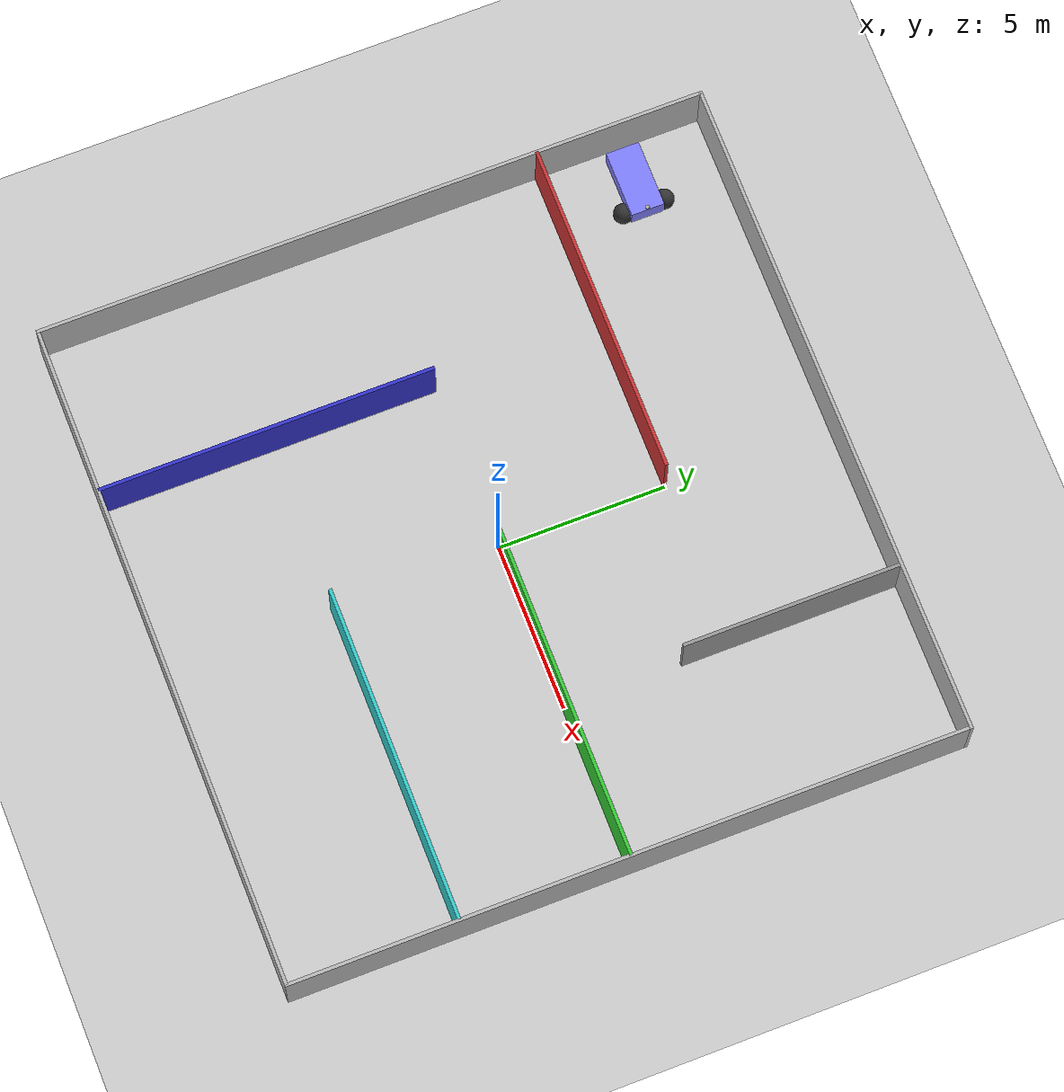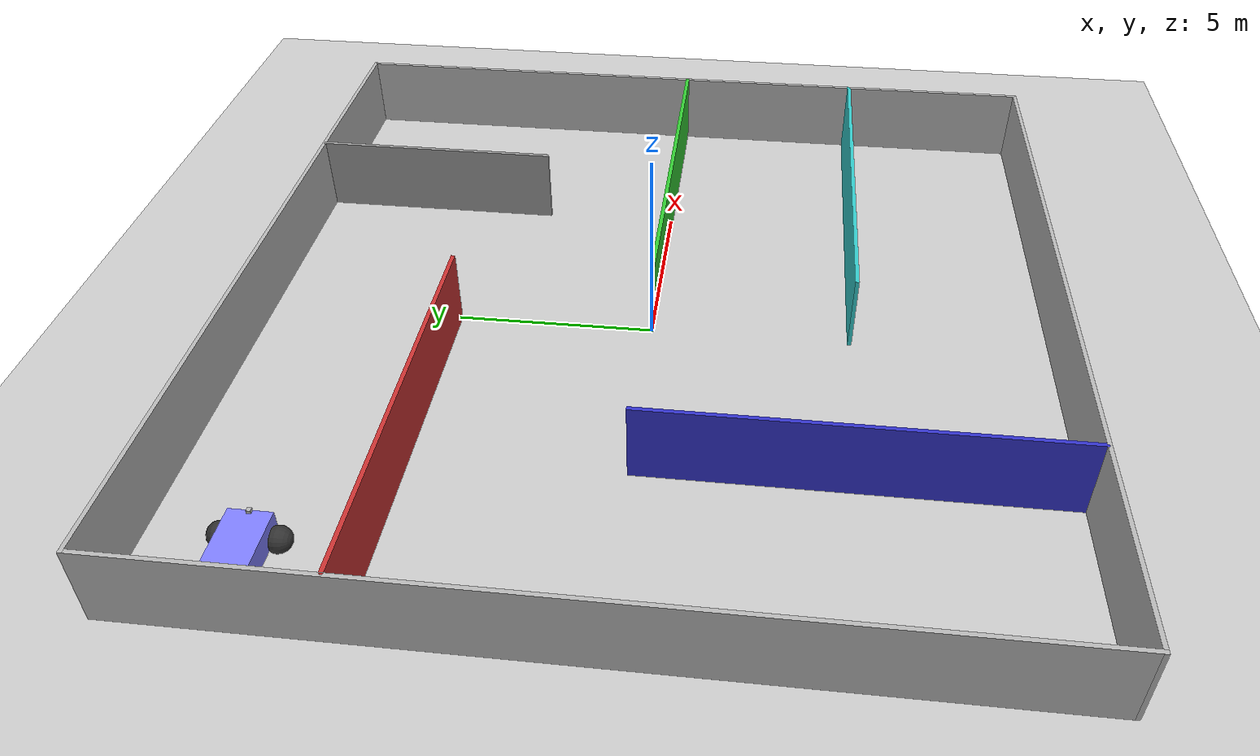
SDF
<?xml version="1.0" ?>
<sdf version="1.7">
  <world name="demo">
    <plugin filename="gz-sim-physics-system" name="gz::sim::systems::Physics"/>
    <plugin filename="gz-sim-sensors-system" name="gz::sim::systems::Sensors">
      <render_engine>ogre2</render_engine>
    </plugin>
    <plugin filename="gz-sim-scene-broadcaster-system" name="gz::sim::systems::SceneBroadcaster"/>
    <plugin filename="gz-sim-user-commands-system" name="gz::sim::systems::UserCommands"/>
    <plugin filename="BasicSystem" name="ros_gz_example_gazebo::BasicSystem"/>
    <plugin filename="FullSystem" name="ros_gz_example_gazebo::FullSystem"/>

    <physics name="10ms" type="ignored">
      <max_step_size>0.01</max_step_size>
      <real_time_factor>1.0</real_time_factor>
      <real_time_update_rate>90.0</real_time_update_rate>
      <ode>
        <solver>
          <iters>20</iters>
        </solver>
      </ode>

    </physics>

    <light name="sun" type="directional">
      <cast_shadows>false</cast_shadows>
      <pose>0 0 10 0 0 0</pose>
      <diffuse>0.8 0.8 0.8 1</diffuse>
      <specular>0.2 0.2 0.2 1</specular>
      <attenuation>
        <range>1000</range>
        <constant>0.9</constant>
        <linear>0.01</linear>
        <quadratic>0.001</quadratic>
      </attenuation>
      <direction>-0.5 0.1 -0.9</direction>
    </light>

    <model name="ground_plane">
      <static>true</static>
      <link name="link">
        <collision name="collision">
          <geometry><plane><normal>0 0 1</normal><size>100 100</size></plane></geometry>
        </collision>
        <visual name="visual">
          <geometry><plane><normal>0 0 1</normal><size>100 100</size></plane></geometry>
          <material>
            <ambient>0.8 0.8 0.8 1</ambient>
            <diffuse>0.8 0.8 0.8 1</diffuse>
            <specular>0.8 0.8 0.8 1</specular>
          </material>
        </visual>
      </link>
    </model>

    <model name="pared_1"><pose>0 10 1 0 0 0</pose><static>true</static><link name="link_1"><visual name="visual_1"><geometry><box><size>20.1 0.1 2</size></box></geometry></visual><collision name="collision_1"><geometry><box><size>20.1 0.1 2</size></box></geometry></collision></link></model>
    <model name="pared_2"><pose>-10 0 1 0 0 1.5708</pose><static>true</static><link name="link_2"><visual name="visual_2"><geometry><box><size>20.1 0.1 2</size></box></geometry></visual><collision name="collision_2"><geometry><box><size>20.1 0.1 2</size></box></geometry></collision></link></model>
    <model name="pared_3"><pose>0 -10 1 0 0 0</pose><static>true</static><link name="link_3"><visual name="visual_3"><geometry><box><size>20.1 0.1 2</size></box></geometry></visual><collision name="collision_3"><geometry><box><size>20.1 0.1 2</size></box></geometry></collision></link></model>
    <model name="pared_4"><pose>10 0 1 0 0 1.5708</pose><static>true</static><link name="link_4"><visual name="visual_4"><geometry><box><size>20.1 0.1 2</size></box></geometry></visual><collision name="collision_4"><geometry><box><size>20.1 0.1 2</size></box></geometry></collision></link></model>

    <model name="i_pared_A"><pose>-5 5 1 0 0 0</pose><static>true</static>
      <link name="link_A">
        <visual name="visual_A"><geometry><box><size>10 0.1 2</size></box></geometry>
          <material><ambient>0.8 0.2 0.2 1</ambient><diffuse>0.8 0.2 0.2 1</diffuse></material>
        </visual>
        <collision name="collision_A"><geometry><box><size>10 0.1 2</size></box></geometry></collision>
      </link>
    </model>

    <model name="i_pared_B"><pose>5 0 1 0 0 0</pose><static>true</static>
      <link name="link_B">
        <visual name="visual_B"><geometry><box><size>10 0.1 2</size></box></geometry>
          <material><ambient>0.2 0.8 0.2 1</ambient><diffuse>0.2 0.8 0.2 1</diffuse></material>
        </visual>
        <collision name="collision_B"><geometry><box><size>10 0.1 2</size></box></geometry></collision>
      </link>
    </model>

    <model name="i_pared_C"><pose>-5 -5 1 0 0 1.5708</pose><static>true</static>
      <link name="link_C">
        <visual name="visual_C"><geometry><box><size>10 0.1 2</size></box></geometry>
          <material><ambient>0.2 0.2 0.8 1</ambient><diffuse>0.2 0.2 0.8 1</diffuse></material>
        </visual>
        <collision name="collision_C"><geometry><box><size>10 0.1 2</size></box></geometry></collision>
      </link>
    </model>

    <model name="i_pared_E"><pose>5 -5 1 0 0 0</pose><static>true</static>
      <link name="link_E">
        <visual name="visual_E"><geometry><box><size>10 0.1 2</size></box></geometry>
          <material><ambient>0.2 0.8 0.8 1</ambient><diffuse>0.2 0.8 0.8 1</diffuse></material>
        </visual>
        <collision name="collision_E"><geometry><box><size>10 0.1 2</size></box></geometry></collision>
      </link>
    </model>

    <model name="pared_nueva">
      <pose>5 6.75 1 0 0 1.5708</pose>
      <static>true</static>
      <link name="link_new">
        <visual name="visual_new">
          <geometry><box><size>6.5 0.1 2</size></box></geometry>
          <material>
            <ambient>0.6 0.6 0.6 1</ambient>
            <diffuse>0.6 0.6 0.6 1</diffuse>
          </material>
        </visual>
        <collision name="collision_new"><geometry><box><size>6.5 0.1 2</size></box></geometry></collision>
      </link>
    </model>

    <model name="diff_drive">
      <self_collide>true</self_collide>
      <pose>-8.5 7.5 0.35 0 0 0</pose>
      <include merge="true">
        <uri>package://ros_gz_example_description/models/diff_drive</uri>
      </include>

      <plugin filename="gz-sim-joint-state-publisher-system" name="gz::sim::systems::JointStatePublisher"/>

      <plugin filename="gz-sim-pose-publisher-system" name="gz::sim::systems::PosePublisher">
        <publish_link_pose>true</publish_link_pose>
        <use_pose_vector_msg>true</use_pose_vector_msg>
        <!-- cambie esto a false -->
        <static_publisher>false</static_publisher>
        <!-- cambie eso a 30, etsaba en 1 -->
        <static_update_frequency>30</static_update_frequency>
      </plugin>

      <plugin filename="gz-sim-odometry-publisher-system" name="gz::sim::systems::OdometryPublisher">
        <odom_frame>diff_drive/odom</odom_frame>
        <robot_base_frame>diff_drive</robot_base_frame>
      </plugin>
    </model>

  </world>
</sdf>

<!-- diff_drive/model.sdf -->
<sdf version="1.8">
    <model name='diff_drive'>
      <link name='chassis'>
        <pose>-0.151427 -0 0.175 0 -0 0</pose>
        <inertial>
          <mass>1.14395</mass>
          <inertia>
            <ixx>0.126164</ixx>
            <ixy>0</ixy>
            <ixz>0</ixz>
            <iyy>0.416519</iyy>
            <iyz>0</iyz>
            <izz>0.481014</izz>
          </inertia>
        </inertial>
        <visual name='visual_chassis'>
          <geometry>
            <box>
              <size>2.01142 1 0.568726</size>
            </box>
          </geometry>
          <material>
            <ambient>0.5 0.5 1.0 1</ambient>
            <diffuse>0.5 0.5 1.0 1</diffuse>
            <specular>0.0 0.0 1.0 1</specular>
          </material>
        </visual>
        <collision name='collision_chassis'>
          <geometry>
            <box>
              <size>2.01142 1 0.568726</size>
            </box>
          </geometry>
        </collision>
      </link>

      <link name='left_wheel'>
        <pose>0.554283 0.625029 -0.025 -1.5707 0 0</pose>
        <inertial>
          <mass>2</mass>
          <inertia>
            <ixx>0.145833</ixx>
            <ixy>0</ixy>
            <ixz>0</ixz>
            <iyy>0.145833</iyy>
            <iyz>0</iyz>
            <izz>0.125</izz>
          </inertia>
        </inertial>
        <visual name='visual_left_wheel'>
          <geometry>
            <sphere>
              <radius>0.3</radius>
            </sphere>
          </geometry>
          <material>
            <ambient>0.2 0.2 0.2 1</ambient>
            <diffuse>0.2 0.2 0.2 1</diffuse>
            <specular>0.2 0.2 0.2 1</specular>
          </material>
        </visual>
        <collision name='collision_left_wheel'>
          <geometry>
            <sphere>
              <radius>0.3</radius>
            </sphere>
          </geometry>
        </collision>
      </link>

      <link name='right_wheel'>
        <pose>0.554282 -0.625029 -0.025 -1.5707 0 0</pose>
        <inertial>
          <mass>2</mass>
          <inertia>
            <ixx>0.145833</ixx>
            <ixy>0</ixy>
            <ixz>0</ixz>
            <iyy>0.145833</iyy>
            <iyz>0</iyz>
            <izz>0.125</izz>
          </inertia>
        </inertial>
        <visual name='visual_right_wheel'>
          <geometry>
            <sphere>
              <radius>0.3</radius>
            </sphere>
          </geometry>
          <material>
            <ambient>0.2 0.2 0.2 1</ambient>
            <diffuse>0.2 0.2 0.2 1</diffuse>
            <specular>0.2 0.2 0.2 1</specular>
          </material>
        </visual>
        <collision name='collision_right_wheel'>
          <geometry>
            <sphere>
              <radius>0.3</radius>
            </sphere>
          </geometry>
        </collision>
      </link>

      <link name='caster'>
        <pose>-0.957138 -0 -0.125 0 -0 0</pose>
        <inertial>
          <mass>1</mass>
          <inertia>
            <ixx>0.1</ixx>
            <ixy>0</ixy>
            <ixz>0</ixz>
            <iyy>0.1</iyy>
            <iyz>0</iyz>
            <izz>0.1</izz>
          </inertia>
        </inertial>
        <visual name='visual_caster'>
          <geometry>
            <sphere>
              <radius>0.2</radius>
            </sphere>
          </geometry>
          <material>
            <ambient>0.2 0.2 0.2 1</ambient>
            <diffuse>0.2 0.2 0.2 1</diffuse>
            <specular>0.2 0.2 0.2 1</specular>
          </material>
        </visual>
        <collision name='collision_caster'>
          <geometry>
            <sphere>
              <radius>0.2</radius>
            </sphere>
          </geometry>
        </collision>
      </link>

      <link name="lidar_link">
        <pose>0.8 0 0.5 0 0 0</pose>
        <inertial>
          <mass>0.1</mass>
          <inertia>
            <ixx>0.000166667</ixx>
            <iyy>0.000166667</iyy>
            <izz>0.000166667</izz>
          </inertia>
        </inertial>
        <collision name="collision">
          <geometry>
            <box>
              <size>0.1 0.1 0.1</size>
            </box>
          </geometry>
        </collision>
        <visual name="visual">
          <geometry>
            <box>
              <size>0.1 0.1 0.1</size>
            </box>
          </geometry>
        </visual>
        <sensor name='gpu_lidar' type='gpu_lidar'>
          <pose>0 0 0 0 0 0</pose>
          <topic>scan</topic>
          <gz_frame_id>diff_drive/lidar_link</gz_frame_id>
          <update_rate>10</update_rate>
          <lidar>
            <scan>
              <horizontal>
                <samples>720</samples>
                <resolution>1</resolution>
                <min_angle>-3.14159</min_angle>
                <max_angle>3.14159</max_angle>
              </horizontal>
              <vertical>
                <samples>1</samples>
                <resolution>1</resolution>
                <min_angle>0.0</min_angle>
                <max_angle>0.0</max_angle>
              </vertical>
            </scan>
            <range>
              <min>0.08</min>
              <max>10.0</max>
              <resolution>0.01</resolution>
            </range>
          </lidar>
          <visualize>true</visualize>
        </sensor>
      </link>

      <joint name='lidar_joint' type='fixed'>
        <parent>chassis</parent>
        <child>lidar_link</child>
      </joint>

      <joint name='left_wheel_joint' type='revolute'>
        <parent>chassis</parent>
        <child>left_wheel</child>
        <axis>
          <xyz>0 0 1</xyz>
          <limit>
            <lower>-1.79769e+308</lower>
            <upper>1.79769e+308</upper>
          </limit>
        </axis>
      </joint>

      <joint name='right_wheel_joint' type='revolute'>
        <parent>chassis</parent>
        <child>right_wheel</child>
        <axis>
          <xyz>0 0 1</xyz>
          <limit>
            <lower>-1.79769e+308</lower>
            <upper>1.79769e+308</upper>
          </limit>
        </axis>
      </joint>

      <joint name='caster_wheel' type='ball'>
        <parent>chassis</parent>
        <child>caster</child>
      </joint>

      <plugin filename="ignition-gazebo-diff-drive-system"
              name="ignition::gazebo::systems::DiffDrive">
        <left_joint>left_wheel_joint</left_joint>
        <right_joint>right_wheel_joint</right_joint>
        <wheel_separation>1.25</wheel_separation>
        <wheel_radius>0.3</wheel_radius>
        <odom_publish_frequency>1</odom_publish_frequency>
        <max_linear_acceleration>1</max_linear_acceleration>
        <min_linear_acceleration>-1</min_linear_acceleration>
        <max_angular_acceleration>2</max_angular_acceleration>
        <min_angular_acceleration>-2</min_angular_acceleration>
        <max_linear_velocity>0.5</max_linear_velocity>
        <min_linear_velocity>-0.5</min_linear_velocity>
        <max_angular_velocity>1</max_angular_velocity>
        <min_angular_velocity>-1</min_angular_velocity>
      </plugin>
    </model>
</sdf>
